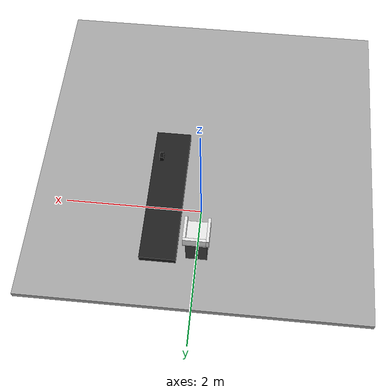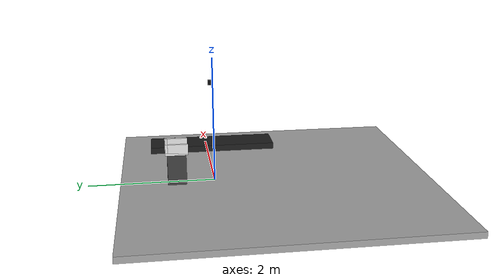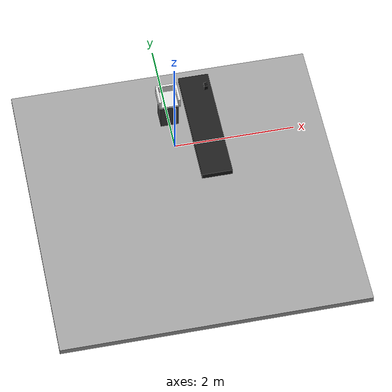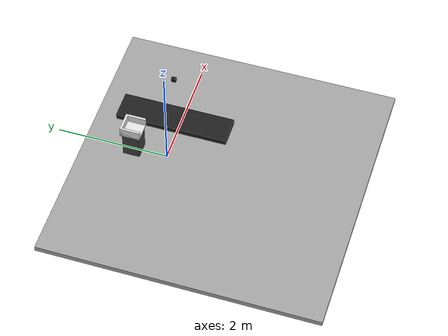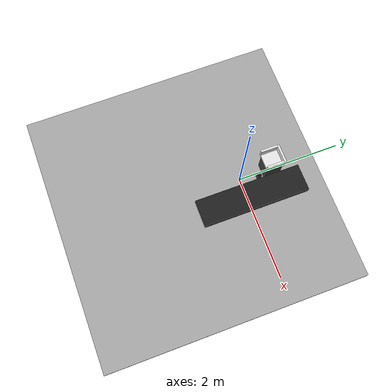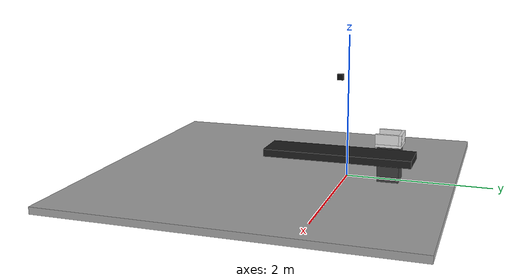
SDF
<?xml version="1.0"?>
<sdf version="1.9">
  <world name="sorting_world">

    <!-- Physics -->
    <plugin filename="gz-sim-physics-system" name="gz::sim::systems::Physics"/>
    <plugin filename="gz-sim-user-commands-system" name="gz::sim::systems::UserCommands"/>
    <plugin filename="gz-sim-scene-broadcaster-system" name="gz::sim::systems::SceneBroadcaster"/>
    <plugin filename="gz-sim-sensors-system" name="gz::sim::systems::Sensors">
      <render_engine>ogre2</render_engine>
    </plugin>

    <gravity>0 0 -9.81</gravity>

    <!-- Lighting -->
    <light type="directional" name="sun">
      <pose>0 0 10 0 0 0</pose>
      <diffuse>0.9 0.9 0.9 1</diffuse>
      <specular>0.2 0.2 0.2 1</specular>
      <direction>-0.5 0.5 -1</direction>
    </light>

    <!-- Ground -->
    <model name="ground">
      <static>true</static>
      <pose>0 -1 -0.05 0 0 0</pose>
      <link name="ground_link">
        <collision name="collision">
          <geometry>
            <box>
              <size>5 5 0.1</size>
            </box>
          </geometry>
        </collision>
        <visual name="visual">
          <geometry>
            <box>
              <size>5 5 0.1</size>
            </box>
          </geometry>
          <material>
            <ambient>0.65 0.65 0.65 1</ambient>
            <diffuse>0.65 0.65 0.65 1</diffuse>
          </material>
        </visual>
      </link>
    </model>

    <!-- Conveyor -->
    <model name="conveyor">
      <static>true</static>
      <!-- Belt top is at z = 0.50 -->
      <pose>0.5 0 0.45 0 0 0</pose>
      <link name="belt">
        <collision name="collision">
          <geometry>
            <box>
              <size>0.5 2.0 0.1</size>
            </box>
          </geometry>
        </collision>
        <visual name="visual">
          <geometry>
            <box>
              <size>0.5 2.0 0.1</size>
            </box>
          </geometry>
          <material>
            <ambient>0.08 0.08 0.08 1</ambient>
            <diffuse>0.12 0.12 0.12 1</diffuse>
          </material>
        </visual>
      </link>
    </model>

    <!-- Overhead RGB camera -->
    <model name="sorting_camera">
      <static>true</static>
      <!-- Camera above conveyor, looking downward -->
      <pose>0.5 0 1.5 0 1.5708 0</pose>
      <link name="camera_link">
        <visual name="camera_body">
          <geometry>
            <box>
              <size>0.08 0.08 0.05</size>
            </box>
          </geometry>
          <material>
            <ambient>0.05 0.05 0.05 1</ambient>
            <diffuse>0.05 0.05 0.05 1</diffuse>
          </material>
        </visual>
        <sensor name="rgb_camera" type="camera">
          <always_on>true</always_on>
          <update_rate>15</update_rate>
          <topic>/sorting_camera/image</topic>
          <camera>
            <horizontal_fov>1.047</horizontal_fov>
            <image>
              <width>640</width>
              <height>480</height>
              <format>R8G8B8</format>
            </image>
            <clip>
              <near>0.1</near>
              <far>10</far>
            </clip>
          </camera>
        </sensor>
      </link>
    </model>

    <!-- REJECT BIN / DEFECT AREA                   -->
    <model name="blue_reject_bin">
      <static>true</static>
      <!--
           Place beside the left end of conveyor,
           close to the UR5 for a short placement path.
      -->
      <pose>0 0.6 0 0 0 0</pose>

      <!-- Dark grey pedestal -->
      <link name="support">
        <visual name="support_visual">
          <pose>0 0 0.25 0 0 0</pose>
          <geometry>
            <box>
              <size>0.30 0.30 0.50</size>
            </box>
          </geometry>
          <material>
            <ambient>0.20 0.20 0.20 1</ambient>
            <diffuse>0.25 0.25 0.25 1</diffuse>
          </material>
        </visual>
        <collision name="support_collision">
          <pose>0 0 0.25 0 0 0</pose>
          <geometry>
            <box>
              <size>0.30 0.30 0.50</size>
            </box>
          </geometry>
        </collision>
      </link>

      <!-- Light grey / white reject tray -->
      <link name="tray">
        <!-- Floor -->
        <visual name="tray_floor_visual">
          <pose>0 0 0.52 0 0 0</pose>
          <geometry>
            <box>
              <size>0.36 0.36 0.04</size>
            </box>
          </geometry>
          <material>
            <ambient>0.80 0.80 0.80 1</ambient>
            <diffuse>0.90 0.90 0.90 1</diffuse>
          </material>
        </visual>
        <collision name="tray_floor_collision">
          <pose>0 0 0.52 0 0 0</pose>
          <geometry>
            <box>
              <size>0.36 0.36 0.04</size>
            </box>
          </geometry>
        </collision>

        <!-- Back wall -->
        <visual name="back_wall_visual">
          <pose>0 0.16 0.60 0 0 0</pose>
          <geometry>
            <box>
              <size>0.36 0.04 0.16</size>
            </box>
          </geometry>
          <material>
            <ambient>0.80 0.80 0.80 1</ambient>
            <diffuse>0.90 0.90 0.90 1</diffuse>
          </material>
        </visual>
        <collision name="back_wall_collision">
          <pose>0 0.16 0.60 0 0 0</pose>
          <geometry>
            <box>
              <size>0.36 0.04 0.16</size>
            </box>
          </geometry>
        </collision>

        <!-- Left wall -->
        <visual name="left_wall_visual">
          <pose>0.16 0 0.60 0 0 0</pose>
          <geometry>
            <box>
              <size>0.04 0.36 0.16</size>
            </box>
          </geometry>
          <material>
            <ambient>0.80 0.80 0.80 1</ambient>
            <diffuse>0.90 0.90 0.90 1</diffuse>
          </material>
        </visual>
        <collision name="left_wall_collision">
          <pose>0.16 0 0.60 0 0 0</pose>
          <geometry>
            <box>
              <size>0.04 0.36 0.16</size>
            </box>
          </geometry>
        </collision>

        <!-- Right wall -->
        <visual name="right_wall_visual">
          <pose>-0.16 0 0.60 0 0 0</pose>
          <geometry>
            <box>
              <size>0.04 0.36 0.16</size>
            </box>
          </geometry>
          <material>
            <ambient>0.80 0.80 0.80 1</ambient>
            <diffuse>0.90 0.90 0.90 1</diffuse>
          </material>
        </visual>
        <collision name="right_wall_collision">
          <pose>-0.16 0 0.60 0 0 0</pose>
          <geometry>
            <box>
              <size>0.04 0.36 0.16</size>
            </box>
          </geometry>
        </collision>
      </link>
    </model>

  </world>
</sdf>
